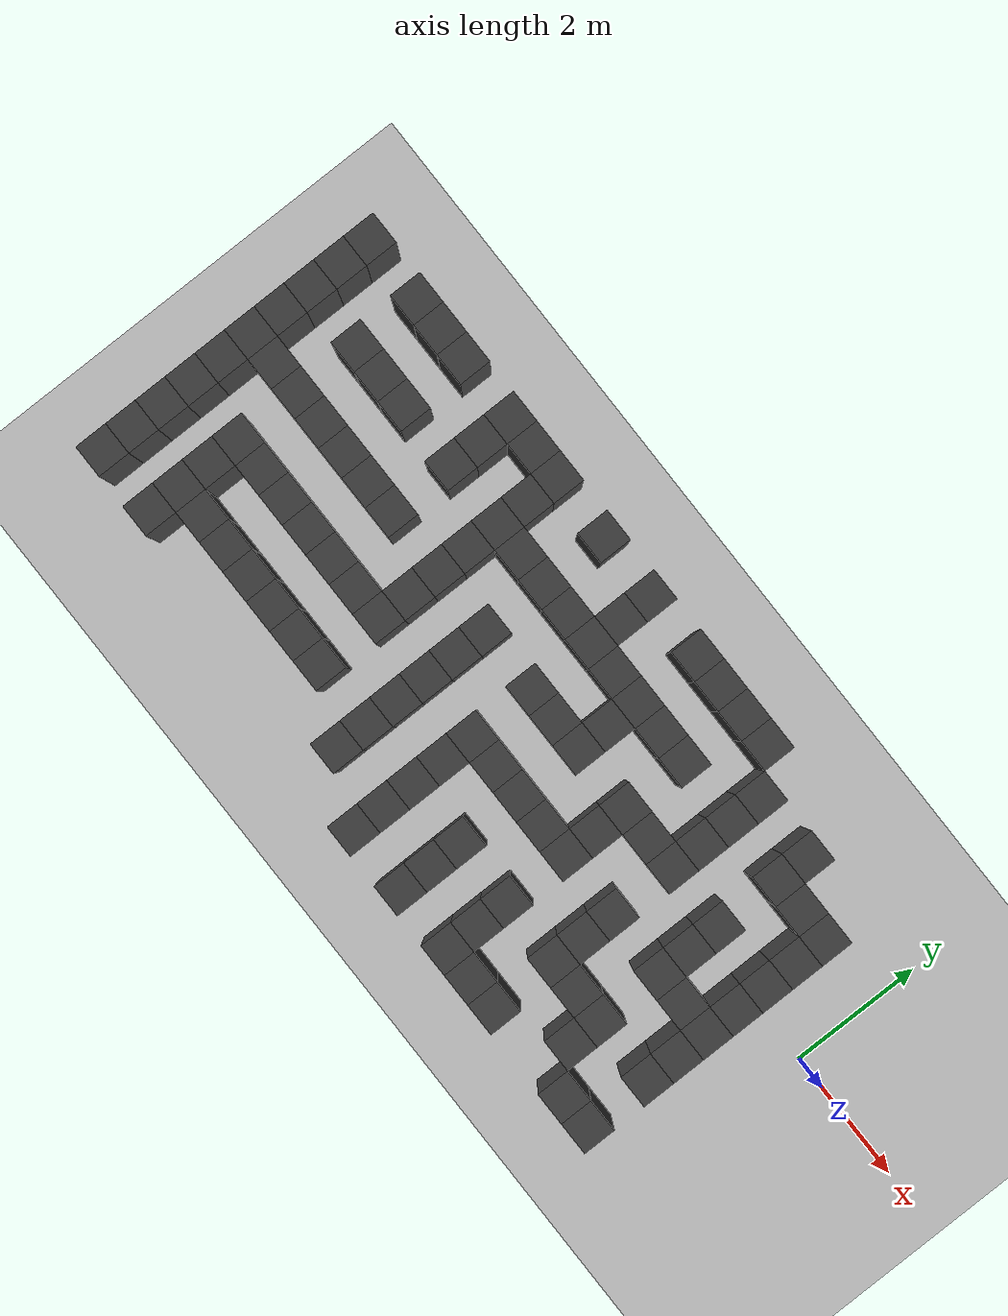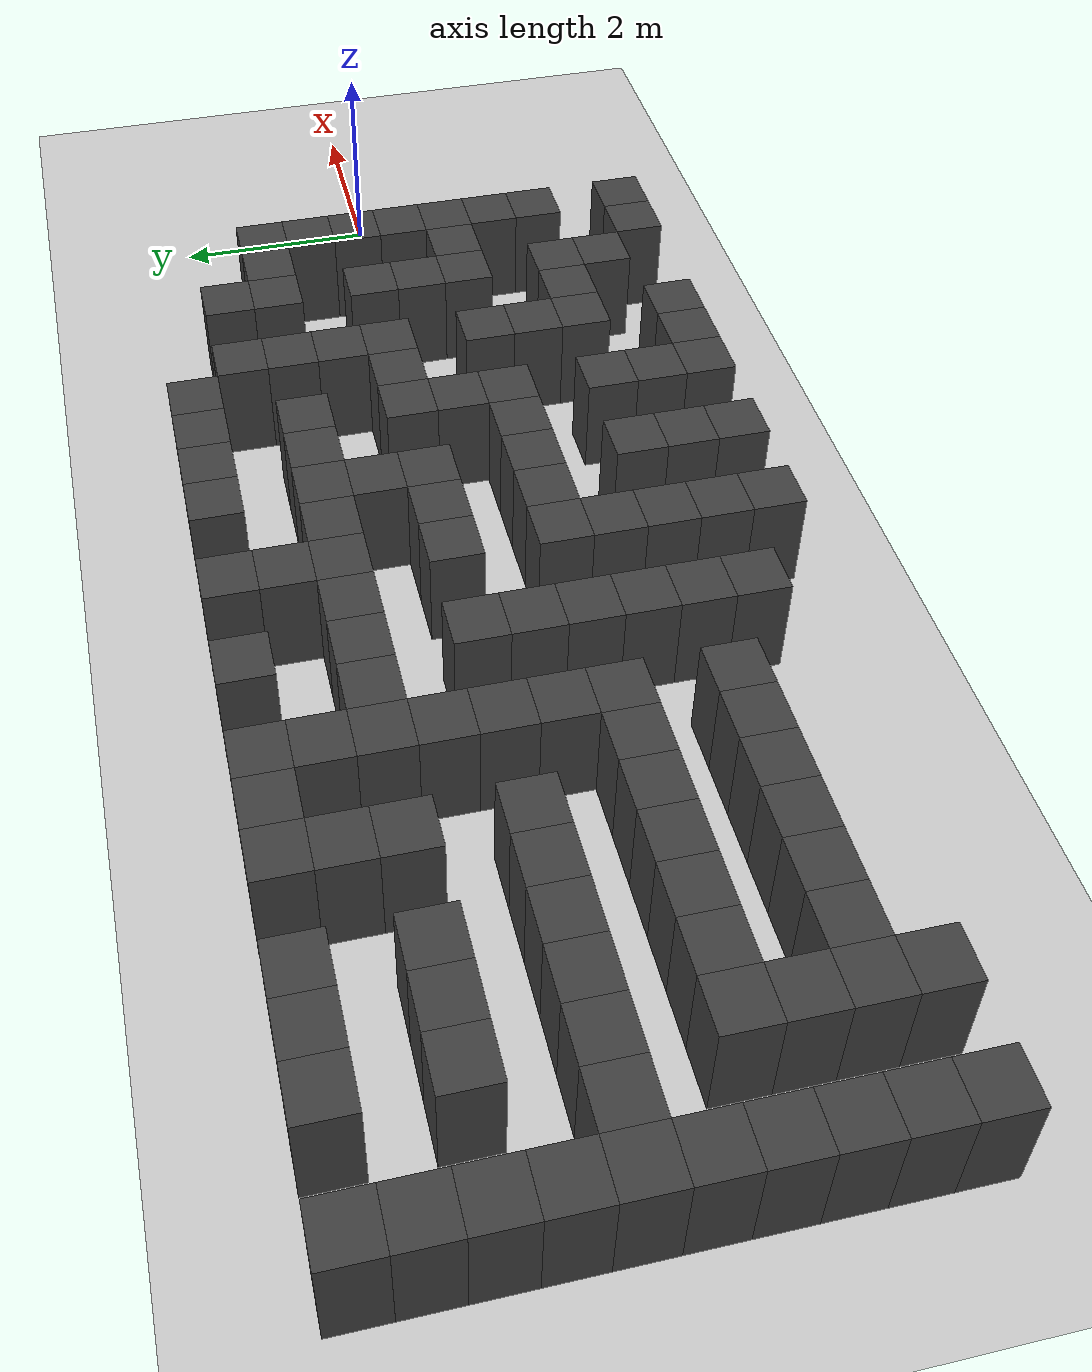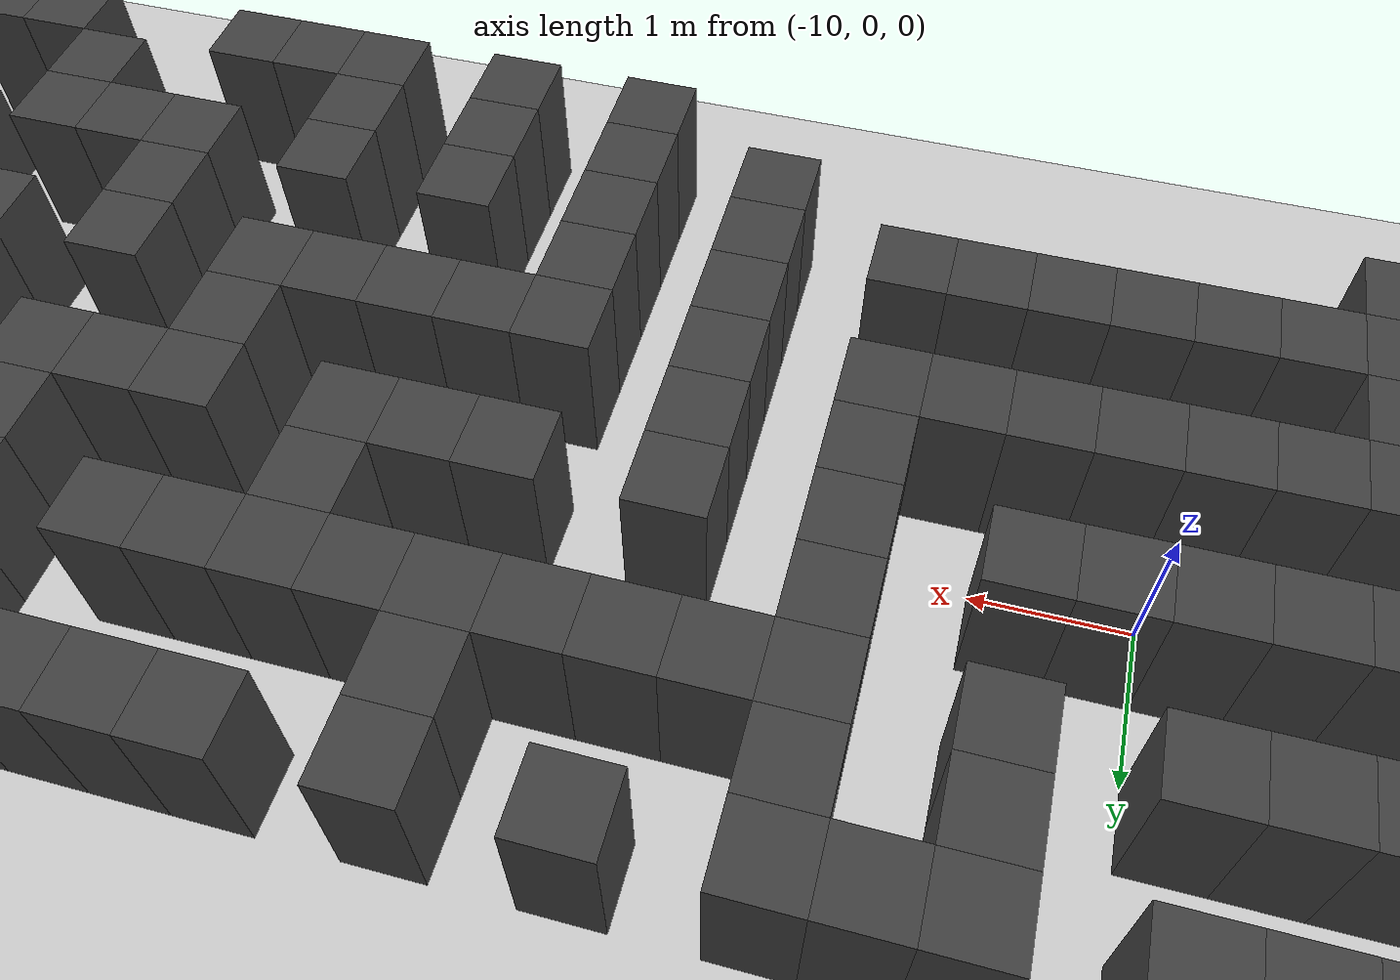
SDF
<sdf version="1.7">
 <world name="map_18914">
  <model name="ground_plane">
   <static>true</static>
   <link name="link">
    <collision name="collision">
     <geometry><plane><normal>0 0 1</normal><size>200 200</size></plane></geometry>
    </collision>
    <visual name="visual">
     <geometry><plane><normal>0 0 1</normal><size>200 200</size></plane></geometry>
     <material><ambient>0.8 0.8 0.8 1</ambient><diffuse>0.8 0.8 0.8 1</diffuse></material>
    </visual>
   </link>
  </model>
  <model name="maze_environment">
   <static>true</static>
   <link name="wall_516">
    <pose>-12.250 2.250 0.500 0 0 0</pose>
    <collision name="col"><geometry><box><size>0.5 0.5 1.0</size></box></geometry></collision>
    <visual name="vis">
     <geometry><box><size>0.5 0.5 1.0</size></box></geometry>
     <material><ambient>0.15 0.15 0.15 1</ambient><diffuse>0.25 0.25 0.25 1</diffuse></material>
    </visual>
   </link>
   <link name="wall_517">
    <pose>-11.250 2.250 0.500 0 0 0</pose>
    <collision name="col"><geometry><box><size>0.5 0.5 1.0</size></box></geometry></collision>
    <visual name="vis">
     <geometry><box><size>0.5 0.5 1.0</size></box></geometry>
     <material><ambient>0.15 0.15 0.15 1</ambient><diffuse>0.25 0.25 0.25 1</diffuse></material>
    </visual>
   </link>
   <link name="wall_518">
    <pose>-10.750 2.250 0.500 0 0 0</pose>
    <collision name="col"><geometry><box><size>0.5 0.5 1.0</size></box></geometry></collision>
    <visual name="vis">
     <geometry><box><size>0.5 0.5 1.0</size></box></geometry>
     <material><ambient>0.15 0.15 0.15 1</ambient><diffuse>0.25 0.25 0.25 1</diffuse></material>
    </visual>
   </link>
   <link name="wall_519">
    <pose>-10.250 2.250 0.500 0 0 0</pose>
    <collision name="col"><geometry><box><size>0.5 0.5 1.0</size></box></geometry></collision>
    <visual name="vis">
     <geometry><box><size>0.5 0.5 1.0</size></box></geometry>
     <material><ambient>0.15 0.15 0.15 1</ambient><diffuse>0.25 0.25 0.25 1</diffuse></material>
    </visual>
   </link>
   <link name="wall_520">
    <pose>-9.250 2.250 0.500 0 0 0</pose>
    <collision name="col"><geometry><box><size>0.5 0.5 1.0</size></box></geometry></collision>
    <visual name="vis">
     <geometry><box><size>0.5 0.5 1.0</size></box></geometry>
     <material><ambient>0.15 0.15 0.15 1</ambient><diffuse>0.25 0.25 0.25 1</diffuse></material>
    </visual>
   </link>
   <link name="wall_521">
    <pose>-8.750 2.250 0.500 0 0 0</pose>
    <collision name="col"><geometry><box><size>0.5 0.5 1.0</size></box></geometry></collision>
    <visual name="vis">
     <geometry><box><size>0.5 0.5 1.0</size></box></geometry>
     <material><ambient>0.15 0.15 0.15 1</ambient><diffuse>0.25 0.25 0.25 1</diffuse></material>
    </visual>
   </link>
   <link name="wall_522">
    <pose>-8.250 2.250 0.500 0 0 0</pose>
    <collision name="col"><geometry><box><size>0.5 0.5 1.0</size></box></geometry></collision>
    <visual name="vis">
     <geometry><box><size>0.5 0.5 1.0</size></box></geometry>
     <material><ambient>0.15 0.15 0.15 1</ambient><diffuse>0.25 0.25 0.25 1</diffuse></material>
    </visual>
   </link>
   <link name="wall_523">
    <pose>-7.250 2.250 0.500 0 0 0</pose>
    <collision name="col"><geometry><box><size>0.5 0.5 1.0</size></box></geometry></collision>
    <visual name="vis">
     <geometry><box><size>0.5 0.5 1.0</size></box></geometry>
     <material><ambient>0.15 0.15 0.15 1</ambient><diffuse>0.25 0.25 0.25 1</diffuse></material>
    </visual>
   </link>
   <link name="wall_524">
    <pose>-6.250 2.250 0.500 0 0 0</pose>
    <collision name="col"><geometry><box><size>0.5 0.5 1.0</size></box></geometry></collision>
    <visual name="vis">
     <geometry><box><size>0.5 0.5 1.0</size></box></geometry>
     <material><ambient>0.15 0.15 0.15 1</ambient><diffuse>0.25 0.25 0.25 1</diffuse></material>
    </visual>
   </link>
   <link name="wall_525">
    <pose>-5.250 2.250 0.500 0 0 0</pose>
    <collision name="col"><geometry><box><size>0.5 0.5 1.0</size></box></geometry></collision>
    <visual name="vis">
     <geometry><box><size>0.5 0.5 1.0</size></box></geometry>
     <material><ambient>0.15 0.15 0.15 1</ambient><diffuse>0.25 0.25 0.25 1</diffuse></material>
    </visual>
   </link>
   <link name="wall_526">
    <pose>-4.750 2.250 0.500 0 0 0</pose>
    <collision name="col"><geometry><box><size>0.5 0.5 1.0</size></box></geometry></collision>
    <visual name="vis">
     <geometry><box><size>0.5 0.5 1.0</size></box></geometry>
     <material><ambient>0.15 0.15 0.15 1</ambient><diffuse>0.25 0.25 0.25 1</diffuse></material>
    </visual>
   </link>
   <link name="wall_527">
    <pose>-4.250 2.250 0.500 0 0 0</pose>
    <collision name="col"><geometry><box><size>0.5 0.5 1.0</size></box></geometry></collision>
    <visual name="vis">
     <geometry><box><size>0.5 0.5 1.0</size></box></geometry>
     <material><ambient>0.15 0.15 0.15 1</ambient><diffuse>0.25 0.25 0.25 1</diffuse></material>
    </visual>
   </link>
   <link name="wall_528">
    <pose>-3.750 2.250 0.500 0 0 0</pose>
    <collision name="col"><geometry><box><size>0.5 0.5 1.0</size></box></geometry></collision>
    <visual name="vis">
     <geometry><box><size>0.5 0.5 1.0</size></box></geometry>
     <material><ambient>0.15 0.15 0.15 1</ambient><diffuse>0.25 0.25 0.25 1</diffuse></material>
    </visual>
   </link>
   <link name="wall_552">
    <pose>-12.250 1.750 0.500 0 0 0</pose>
    <collision name="col"><geometry><box><size>0.5 0.5 1.0</size></box></geometry></collision>
    <visual name="vis">
     <geometry><box><size>0.5 0.5 1.0</size></box></geometry>
     <material><ambient>0.15 0.15 0.15 1</ambient><diffuse>0.25 0.25 0.25 1</diffuse></material>
    </visual>
   </link>
   <link name="wall_553">
    <pose>-9.250 1.750 0.500 0 0 0</pose>
    <collision name="col"><geometry><box><size>0.5 0.5 1.0</size></box></geometry></collision>
    <visual name="vis">
     <geometry><box><size>0.5 0.5 1.0</size></box></geometry>
     <material><ambient>0.15 0.15 0.15 1</ambient><diffuse>0.25 0.25 0.25 1</diffuse></material>
    </visual>
   </link>
   <link name="wall_554">
    <pose>-8.250 1.750 0.500 0 0 0</pose>
    <collision name="col"><geometry><box><size>0.5 0.5 1.0</size></box></geometry></collision>
    <visual name="vis">
     <geometry><box><size>0.5 0.5 1.0</size></box></geometry>
     <material><ambient>0.15 0.15 0.15 1</ambient><diffuse>0.25 0.25 0.25 1</diffuse></material>
    </visual>
   </link>
   <link name="wall_555">
    <pose>-6.250 1.750 0.500 0 0 0</pose>
    <collision name="col"><geometry><box><size>0.5 0.5 1.0</size></box></geometry></collision>
    <visual name="vis">
     <geometry><box><size>0.5 0.5 1.0</size></box></geometry>
     <material><ambient>0.15 0.15 0.15 1</ambient><diffuse>0.25 0.25 0.25 1</diffuse></material>
    </visual>
   </link>
   <link name="wall_556">
    <pose>-3.250 1.750 0.500 0 0 0</pose>
    <collision name="col"><geometry><box><size>0.5 0.5 1.0</size></box></geometry></collision>
    <visual name="vis">
     <geometry><box><size>0.5 0.5 1.0</size></box></geometry>
     <material><ambient>0.15 0.15 0.15 1</ambient><diffuse>0.25 0.25 0.25 1</diffuse></material>
    </visual>
   </link>
   <link name="wall_557">
    <pose>-2.250 1.750 0.500 0 0 0</pose>
    <collision name="col"><geometry><box><size>0.5 0.5 1.0</size></box></geometry></collision>
    <visual name="vis">
     <geometry><box><size>0.5 0.5 1.0</size></box></geometry>
     <material><ambient>0.15 0.15 0.15 1</ambient><diffuse>0.25 0.25 0.25 1</diffuse></material>
    </visual>
   </link>
   <link name="wall_566">
    <pose>-12.250 1.250 0.500 0 0 0</pose>
    <collision name="col"><geometry><box><size>0.5 0.5 1.0</size></box></geometry></collision>
    <visual name="vis">
     <geometry><box><size>0.5 0.5 1.0</size></box></geometry>
     <material><ambient>0.15 0.15 0.15 1</ambient><diffuse>0.25 0.25 0.25 1</diffuse></material>
    </visual>
   </link>
   <link name="wall_567">
    <pose>-11.250 1.250 0.500 0 0 0</pose>
    <collision name="col"><geometry><box><size>0.5 0.5 1.0</size></box></geometry></collision>
    <visual name="vis">
     <geometry><box><size>0.5 0.5 1.0</size></box></geometry>
     <material><ambient>0.15 0.15 0.15 1</ambient><diffuse>0.25 0.25 0.25 1</diffuse></material>
    </visual>
   </link>
   <link name="wall_568">
    <pose>-10.750 1.250 0.500 0 0 0</pose>
    <collision name="col"><geometry><box><size>0.5 0.5 1.0</size></box></geometry></collision>
    <visual name="vis">
     <geometry><box><size>0.5 0.5 1.0</size></box></geometry>
     <material><ambient>0.15 0.15 0.15 1</ambient><diffuse>0.25 0.25 0.25 1</diffuse></material>
    </visual>
   </link>
   <link name="wall_569">
    <pose>-10.250 1.250 0.500 0 0 0</pose>
    <collision name="col"><geometry><box><size>0.5 0.5 1.0</size></box></geometry></collision>
    <visual name="vis">
     <geometry><box><size>0.5 0.5 1.0</size></box></geometry>
     <material><ambient>0.15 0.15 0.15 1</ambient><diffuse>0.25 0.25 0.25 1</diffuse></material>
    </visual>
   </link>
   <link name="wall_570">
    <pose>-9.250 1.250 0.500 0 0 0</pose>
    <collision name="col"><geometry><box><size>0.5 0.5 1.0</size></box></geometry></collision>
    <visual name="vis">
     <geometry><box><size>0.5 0.5 1.0</size></box></geometry>
     <material><ambient>0.15 0.15 0.15 1</ambient><diffuse>0.25 0.25 0.25 1</diffuse></material>
    </visual>
   </link>
   <link name="wall_571">
    <pose>-8.250 1.250 0.500 0 0 0</pose>
    <collision name="col"><geometry><box><size>0.5 0.5 1.0</size></box></geometry></collision>
    <visual name="vis">
     <geometry><box><size>0.5 0.5 1.0</size></box></geometry>
     <material><ambient>0.15 0.15 0.15 1</ambient><diffuse>0.25 0.25 0.25 1</diffuse></material>
    </visual>
   </link>
   <link name="wall_572">
    <pose>-7.750 1.250 0.500 0 0 0</pose>
    <collision name="col"><geometry><box><size>0.5 0.5 1.0</size></box></geometry></collision>
    <visual name="vis">
     <geometry><box><size>0.5 0.5 1.0</size></box></geometry>
     <material><ambient>0.15 0.15 0.15 1</ambient><diffuse>0.25 0.25 0.25 1</diffuse></material>
    </visual>
   </link>
   <link name="wall_573">
    <pose>-7.250 1.250 0.500 0 0 0</pose>
    <collision name="col"><geometry><box><size>0.5 0.5 1.0</size></box></geometry></collision>
    <visual name="vis">
     <geometry><box><size>0.5 0.5 1.0</size></box></geometry>
     <material><ambient>0.15 0.15 0.15 1</ambient><diffuse>0.25 0.25 0.25 1</diffuse></material>
    </visual>
   </link>
   <link name="wall_574">
    <pose>-6.750 1.250 0.500 0 0 0</pose>
    <collision name="col"><geometry><box><size>0.5 0.5 1.0</size></box></geometry></collision>
    <visual name="vis">
     <geometry><box><size>0.5 0.5 1.0</size></box></geometry>
     <material><ambient>0.15 0.15 0.15 1</ambient><diffuse>0.25 0.25 0.25 1</diffuse></material>
    </visual>
   </link>
   <link name="wall_575">
    <pose>-6.250 1.250 0.500 0 0 0</pose>
    <collision name="col"><geometry><box><size>0.5 0.5 1.0</size></box></geometry></collision>
    <visual name="vis">
     <geometry><box><size>0.5 0.5 1.0</size></box></geometry>
     <material><ambient>0.15 0.15 0.15 1</ambient><diffuse>0.25 0.25 0.25 1</diffuse></material>
    </visual>
   </link>
   <link name="wall_576">
    <pose>-5.750 1.250 0.500 0 0 0</pose>
    <collision name="col"><geometry><box><size>0.5 0.5 1.0</size></box></geometry></collision>
    <visual name="vis">
     <geometry><box><size>0.5 0.5 1.0</size></box></geometry>
     <material><ambient>0.15 0.15 0.15 1</ambient><diffuse>0.25 0.25 0.25 1</diffuse></material>
    </visual>
   </link>
   <link name="wall_577">
    <pose>-5.250 1.250 0.500 0 0 0</pose>
    <collision name="col"><geometry><box><size>0.5 0.5 1.0</size></box></geometry></collision>
    <visual name="vis">
     <geometry><box><size>0.5 0.5 1.0</size></box></geometry>
     <material><ambient>0.15 0.15 0.15 1</ambient><diffuse>0.25 0.25 0.25 1</diffuse></material>
    </visual>
   </link>
   <link name="wall_578">
    <pose>-4.750 1.250 0.500 0 0 0</pose>
    <collision name="col"><geometry><box><size>0.5 0.5 1.0</size></box></geometry></collision>
    <visual name="vis">
     <geometry><box><size>0.5 0.5 1.0</size></box></geometry>
     <material><ambient>0.15 0.15 0.15 1</ambient><diffuse>0.25 0.25 0.25 1</diffuse></material>
    </visual>
   </link>
   <link name="wall_579">
    <pose>-4.250 1.250 0.500 0 0 0</pose>
    <collision name="col"><geometry><box><size>0.5 0.5 1.0</size></box></geometry></collision>
    <visual name="vis">
     <geometry><box><size>0.5 0.5 1.0</size></box></geometry>
     <material><ambient>0.15 0.15 0.15 1</ambient><diffuse>0.25 0.25 0.25 1</diffuse></material>
    </visual>
   </link>
   <link name="wall_580">
    <pose>-3.250 1.250 0.500 0 0 0</pose>
    <collision name="col"><geometry><box><size>0.5 0.5 1.0</size></box></geometry></collision>
    <visual name="vis">
     <geometry><box><size>0.5 0.5 1.0</size></box></geometry>
     <material><ambient>0.15 0.15 0.15 1</ambient><diffuse>0.25 0.25 0.25 1</diffuse></material>
    </visual>
   </link>
   <link name="wall_581">
    <pose>-2.250 1.250 0.500 0 0 0</pose>
    <collision name="col"><geometry><box><size>0.5 0.5 1.0</size></box></geometry></collision>
    <visual name="vis">
     <geometry><box><size>0.5 0.5 1.0</size></box></geometry>
     <material><ambient>0.15 0.15 0.15 1</ambient><diffuse>0.25 0.25 0.25 1</diffuse></material>
    </visual>
   </link>
   <link name="wall_582">
    <pose>-1.750 1.250 0.500 0 0 0</pose>
    <collision name="col"><geometry><box><size>0.5 0.5 1.0</size></box></geometry></collision>
    <visual name="vis">
     <geometry><box><size>0.5 0.5 1.0</size></box></geometry>
     <material><ambient>0.15 0.15 0.15 1</ambient><diffuse>0.25 0.25 0.25 1</diffuse></material>
    </visual>
   </link>
   <link name="wall_583">
    <pose>-1.250 1.250 0.500 0 0 0</pose>
    <collision name="col"><geometry><box><size>0.5 0.5 1.0</size></box></geometry></collision>
    <visual name="vis">
     <geometry><box><size>0.5 0.5 1.0</size></box></geometry>
     <material><ambient>0.15 0.15 0.15 1</ambient><diffuse>0.25 0.25 0.25 1</diffuse></material>
    </visual>
   </link>
   <link name="wall_602">
    <pose>-12.250 0.750 0.500 0 0 0</pose>
    <collision name="col"><geometry><box><size>0.5 0.5 1.0</size></box></geometry></collision>
    <visual name="vis">
     <geometry><box><size>0.5 0.5 1.0</size></box></geometry>
     <material><ambient>0.15 0.15 0.15 1</ambient><diffuse>0.25 0.25 0.25 1</diffuse></material>
    </visual>
   </link>
   <link name="wall_603">
    <pose>-8.250 0.750 0.500 0 0 0</pose>
    <collision name="col"><geometry><box><size>0.5 0.5 1.0</size></box></geometry></collision>
    <visual name="vis">
     <geometry><box><size>0.5 0.5 1.0</size></box></geometry>
     <material><ambient>0.15 0.15 0.15 1</ambient><diffuse>0.25 0.25 0.25 1</diffuse></material>
    </visual>
   </link>
   <link name="wall_604">
    <pose>-5.250 0.750 0.500 0 0 0</pose>
    <collision name="col"><geometry><box><size>0.5 0.5 1.0</size></box></geometry></collision>
    <visual name="vis">
     <geometry><box><size>0.5 0.5 1.0</size></box></geometry>
     <material><ambient>0.15 0.15 0.15 1</ambient><diffuse>0.25 0.25 0.25 1</diffuse></material>
    </visual>
   </link>
   <link name="wall_605">
    <pose>-3.250 0.750 0.500 0 0 0</pose>
    <collision name="col"><geometry><box><size>0.5 0.5 1.0</size></box></geometry></collision>
    <visual name="vis">
     <geometry><box><size>0.5 0.5 1.0</size></box></geometry>
     <material><ambient>0.15 0.15 0.15 1</ambient><diffuse>0.25 0.25 0.25 1</diffuse></material>
    </visual>
   </link>
   <link name="wall_606">
    <pose>-1.250 0.750 0.500 0 0 0</pose>
    <collision name="col"><geometry><box><size>0.5 0.5 1.0</size></box></geometry></collision>
    <visual name="vis">
     <geometry><box><size>0.5 0.5 1.0</size></box></geometry>
     <material><ambient>0.15 0.15 0.15 1</ambient><diffuse>0.25 0.25 0.25 1</diffuse></material>
    </visual>
   </link>
   <link name="wall_614">
    <pose>-12.250 0.250 0.500 0 0 0</pose>
    <collision name="col"><geometry><box><size>0.5 0.5 1.0</size></box></geometry></collision>
    <visual name="vis">
     <geometry><box><size>0.5 0.5 1.0</size></box></geometry>
     <material><ambient>0.15 0.15 0.15 1</ambient><diffuse>0.25 0.25 0.25 1</diffuse></material>
    </visual>
   </link>
   <link name="wall_615">
    <pose>-11.750 0.250 0.500 0 0 0</pose>
    <collision name="col"><geometry><box><size>0.5 0.5 1.0</size></box></geometry></collision>
    <visual name="vis">
     <geometry><box><size>0.5 0.5 1.0</size></box></geometry>
     <material><ambient>0.15 0.15 0.15 1</ambient><diffuse>0.25 0.25 0.25 1</diffuse></material>
    </visual>
   </link>
   <link name="wall_616">
    <pose>-11.250 0.250 0.500 0 0 0</pose>
    <collision name="col"><geometry><box><size>0.5 0.5 1.0</size></box></geometry></collision>
    <visual name="vis">
     <geometry><box><size>0.5 0.5 1.0</size></box></geometry>
     <material><ambient>0.15 0.15 0.15 1</ambient><diffuse>0.25 0.25 0.25 1</diffuse></material>
    </visual>
   </link>
   <link name="wall_617">
    <pose>-10.750 0.250 0.500 0 0 0</pose>
    <collision name="col"><geometry><box><size>0.5 0.5 1.0</size></box></geometry></collision>
    <visual name="vis">
     <geometry><box><size>0.5 0.5 1.0</size></box></geometry>
     <material><ambient>0.15 0.15 0.15 1</ambient><diffuse>0.25 0.25 0.25 1</diffuse></material>
    </visual>
   </link>
   <link name="wall_618">
    <pose>-10.250 0.250 0.500 0 0 0</pose>
    <collision name="col"><geometry><box><size>0.5 0.5 1.0</size></box></geometry></collision>
    <visual name="vis">
     <geometry><box><size>0.5 0.5 1.0</size></box></geometry>
     <material><ambient>0.15 0.15 0.15 1</ambient><diffuse>0.25 0.25 0.25 1</diffuse></material>
    </visual>
   </link>
   <link name="wall_619">
    <pose>-9.750 0.250 0.500 0 0 0</pose>
    <collision name="col"><geometry><box><size>0.5 0.5 1.0</size></box></geometry></collision>
    <visual name="vis">
     <geometry><box><size>0.5 0.5 1.0</size></box></geometry>
     <material><ambient>0.15 0.15 0.15 1</ambient><diffuse>0.25 0.25 0.25 1</diffuse></material>
    </visual>
   </link>
   <link name="wall_620">
    <pose>-9.250 0.250 0.500 0 0 0</pose>
    <collision name="col"><geometry><box><size>0.5 0.5 1.0</size></box></geometry></collision>
    <visual name="vis">
     <geometry><box><size>0.5 0.5 1.0</size></box></geometry>
     <material><ambient>0.15 0.15 0.15 1</ambient><diffuse>0.25 0.25 0.25 1</diffuse></material>
    </visual>
   </link>
   <link name="wall_621">
    <pose>-8.250 0.250 0.500 0 0 0</pose>
    <collision name="col"><geometry><box><size>0.5 0.5 1.0</size></box></geometry></collision>
    <visual name="vis">
     <geometry><box><size>0.5 0.5 1.0</size></box></geometry>
     <material><ambient>0.15 0.15 0.15 1</ambient><diffuse>0.25 0.25 0.25 1</diffuse></material>
    </visual>
   </link>
   <link name="wall_622">
    <pose>-7.250 0.250 0.500 0 0 0</pose>
    <collision name="col"><geometry><box><size>0.5 0.5 1.0</size></box></geometry></collision>
    <visual name="vis">
     <geometry><box><size>0.5 0.5 1.0</size></box></geometry>
     <material><ambient>0.15 0.15 0.15 1</ambient><diffuse>0.25 0.25 0.25 1</diffuse></material>
    </visual>
   </link>
   <link name="wall_623">
    <pose>-6.250 0.250 0.500 0 0 0</pose>
    <collision name="col"><geometry><box><size>0.5 0.5 1.0</size></box></geometry></collision>
    <visual name="vis">
     <geometry><box><size>0.5 0.5 1.0</size></box></geometry>
     <material><ambient>0.15 0.15 0.15 1</ambient><diffuse>0.25 0.25 0.25 1</diffuse></material>
    </visual>
   </link>
   <link name="wall_624">
    <pose>-5.750 0.250 0.500 0 0 0</pose>
    <collision name="col"><geometry><box><size>0.5 0.5 1.0</size></box></geometry></collision>
    <visual name="vis">
     <geometry><box><size>0.5 0.5 1.0</size></box></geometry>
     <material><ambient>0.15 0.15 0.15 1</ambient><diffuse>0.25 0.25 0.25 1</diffuse></material>
    </visual>
   </link>
   <link name="wall_625">
    <pose>-5.250 0.250 0.500 0 0 0</pose>
    <collision name="col"><geometry><box><size>0.5 0.5 1.0</size></box></geometry></collision>
    <visual name="vis">
     <geometry><box><size>0.5 0.5 1.0</size></box></geometry>
     <material><ambient>0.15 0.15 0.15 1</ambient><diffuse>0.25 0.25 0.25 1</diffuse></material>
    </visual>
   </link>
   <link name="wall_626">
    <pose>-4.250 0.250 0.500 0 0 0</pose>
    <collision name="col"><geometry><box><size>0.5 0.5 1.0</size></box></geometry></collision>
    <visual name="vis">
     <geometry><box><size>0.5 0.5 1.0</size></box></geometry>
     <material><ambient>0.15 0.15 0.15 1</ambient><diffuse>0.25 0.25 0.25 1</diffuse></material>
    </visual>
   </link>
   <link name="wall_627">
    <pose>-3.750 0.250 0.500 0 0 0</pose>
    <collision name="col"><geometry><box><size>0.5 0.5 1.0</size></box></geometry></collision>
    <visual name="vis">
     <geometry><box><size>0.5 0.5 1.0</size></box></geometry>
     <material><ambient>0.15 0.15 0.15 1</ambient><diffuse>0.25 0.25 0.25 1</diffuse></material>
    </visual>
   </link>
   <link name="wall_628">
    <pose>-3.250 0.250 0.500 0 0 0</pose>
    <collision name="col"><geometry><box><size>0.5 0.5 1.0</size></box></geometry></collision>
    <visual name="vis">
     <geometry><box><size>0.5 0.5 1.0</size></box></geometry>
     <material><ambient>0.15 0.15 0.15 1</ambient><diffuse>0.25 0.25 0.25 1</diffuse></material>
    </visual>
   </link>
   <link name="wall_629">
    <pose>-2.250 0.250 0.500 0 0 0</pose>
    <collision name="col"><geometry><box><size>0.5 0.5 1.0</size></box></geometry></collision>
    <visual name="vis">
     <geometry><box><size>0.5 0.5 1.0</size></box></geometry>
     <material><ambient>0.15 0.15 0.15 1</ambient><diffuse>0.25 0.25 0.25 1</diffuse></material>
    </visual>
   </link>
   <link name="wall_630">
    <pose>-1.250 0.250 0.500 0 0 0</pose>
    <collision name="col"><geometry><box><size>0.5 0.5 1.0</size></box></geometry></collision>
    <visual name="vis">
     <geometry><box><size>0.5 0.5 1.0</size></box></geometry>
     <material><ambient>0.15 0.15 0.15 1</ambient><diffuse>0.25 0.25 0.25 1</diffuse></material>
    </visual>
   </link>
   <link name="wall_652">
    <pose>-12.250 -0.250 0.500 0 0 0</pose>
    <collision name="col"><geometry><box><size>0.5 0.5 1.0</size></box></geometry></collision>
    <visual name="vis">
     <geometry><box><size>0.5 0.5 1.0</size></box></geometry>
     <material><ambient>0.15 0.15 0.15 1</ambient><diffuse>0.25 0.25 0.25 1</diffuse></material>
    </visual>
   </link>
   <link name="wall_653">
    <pose>-8.250 -0.250 0.500 0 0 0</pose>
    <collision name="col"><geometry><box><size>0.5 0.5 1.0</size></box></geometry></collision>
    <visual name="vis">
     <geometry><box><size>0.5 0.5 1.0</size></box></geometry>
     <material><ambient>0.15 0.15 0.15 1</ambient><diffuse>0.25 0.25 0.25 1</diffuse></material>
    </visual>
   </link>
   <link name="wall_654">
    <pose>-7.250 -0.250 0.500 0 0 0</pose>
    <collision name="col"><geometry><box><size>0.5 0.5 1.0</size></box></geometry></collision>
    <visual name="vis">
     <geometry><box><size>0.5 0.5 1.0</size></box></geometry>
     <material><ambient>0.15 0.15 0.15 1</ambient><diffuse>0.25 0.25 0.25 1</diffuse></material>
    </visual>
   </link>
   <link name="wall_655">
    <pose>-4.250 -0.250 0.500 0 0 0</pose>
    <collision name="col"><geometry><box><size>0.5 0.5 1.0</size></box></geometry></collision>
    <visual name="vis">
     <geometry><box><size>0.5 0.5 1.0</size></box></geometry>
     <material><ambient>0.15 0.15 0.15 1</ambient><diffuse>0.25 0.25 0.25 1</diffuse></material>
    </visual>
   </link>
   <link name="wall_656">
    <pose>-2.250 -0.250 0.500 0 0 0</pose>
    <collision name="col"><geometry><box><size>0.5 0.5 1.0</size></box></geometry></collision>
    <visual name="vis">
     <geometry><box><size>0.5 0.5 1.0</size></box></geometry>
     <material><ambient>0.15 0.15 0.15 1</ambient><diffuse>0.25 0.25 0.25 1</diffuse></material>
    </visual>
   </link>
   <link name="wall_657">
    <pose>-1.250 -0.250 0.500 0 0 0</pose>
    <collision name="col"><geometry><box><size>0.5 0.5 1.0</size></box></geometry></collision>
    <visual name="vis">
     <geometry><box><size>0.5 0.5 1.0</size></box></geometry>
     <material><ambient>0.15 0.15 0.15 1</ambient><diffuse>0.25 0.25 0.25 1</diffuse></material>
    </visual>
   </link>
   <link name="wall_665">
    <pose>-12.250 -0.750 0.500 0 0 0</pose>
    <collision name="col"><geometry><box><size>0.5 0.5 1.0</size></box></geometry></collision>
    <visual name="vis">
     <geometry><box><size>0.5 0.5 1.0</size></box></geometry>
     <material><ambient>0.15 0.15 0.15 1</ambient><diffuse>0.25 0.25 0.25 1</diffuse></material>
    </visual>
   </link>
   <link name="wall_666">
    <pose>-11.250 -0.750 0.500 0 0 0</pose>
    <collision name="col"><geometry><box><size>0.5 0.5 1.0</size></box></geometry></collision>
    <visual name="vis">
     <geometry><box><size>0.5 0.5 1.0</size></box></geometry>
     <material><ambient>0.15 0.15 0.15 1</ambient><diffuse>0.25 0.25 0.25 1</diffuse></material>
    </visual>
   </link>
   <link name="wall_667">
    <pose>-10.750 -0.750 0.500 0 0 0</pose>
    <collision name="col"><geometry><box><size>0.5 0.5 1.0</size></box></geometry></collision>
    <visual name="vis">
     <geometry><box><size>0.5 0.5 1.0</size></box></geometry>
     <material><ambient>0.15 0.15 0.15 1</ambient><diffuse>0.25 0.25 0.25 1</diffuse></material>
    </visual>
   </link>
   <link name="wall_668">
    <pose>-10.250 -0.750 0.500 0 0 0</pose>
    <collision name="col"><geometry><box><size>0.5 0.5 1.0</size></box></geometry></collision>
    <visual name="vis">
     <geometry><box><size>0.5 0.5 1.0</size></box></geometry>
     <material><ambient>0.15 0.15 0.15 1</ambient><diffuse>0.25 0.25 0.25 1</diffuse></material>
    </visual>
   </link>
   <link name="wall_669">
    <pose>-9.750 -0.750 0.500 0 0 0</pose>
    <collision name="col"><geometry><box><size>0.5 0.5 1.0</size></box></geometry></collision>
    <visual name="vis">
     <geometry><box><size>0.5 0.5 1.0</size></box></geometry>
     <material><ambient>0.15 0.15 0.15 1</ambient><diffuse>0.25 0.25 0.25 1</diffuse></material>
    </visual>
   </link>
   <link name="wall_670">
    <pose>-9.250 -0.750 0.500 0 0 0</pose>
    <collision name="col"><geometry><box><size>0.5 0.5 1.0</size></box></geometry></collision>
    <visual name="vis">
     <geometry><box><size>0.5 0.5 1.0</size></box></geometry>
     <material><ambient>0.15 0.15 0.15 1</ambient><diffuse>0.25 0.25 0.25 1</diffuse></material>
    </visual>
   </link>
   <link name="wall_671">
    <pose>-8.750 -0.750 0.500 0 0 0</pose>
    <collision name="col"><geometry><box><size>0.5 0.5 1.0</size></box></geometry></collision>
    <visual name="vis">
     <geometry><box><size>0.5 0.5 1.0</size></box></geometry>
     <material><ambient>0.15 0.15 0.15 1</ambient><diffuse>0.25 0.25 0.25 1</diffuse></material>
    </visual>
   </link>
   <link name="wall_672">
    <pose>-8.250 -0.750 0.500 0 0 0</pose>
    <collision name="col"><geometry><box><size>0.5 0.5 1.0</size></box></geometry></collision>
    <visual name="vis">
     <geometry><box><size>0.5 0.5 1.0</size></box></geometry>
     <material><ambient>0.15 0.15 0.15 1</ambient><diffuse>0.25 0.25 0.25 1</diffuse></material>
    </visual>
   </link>
   <link name="wall_673">
    <pose>-7.250 -0.750 0.500 0 0 0</pose>
    <collision name="col"><geometry><box><size>0.5 0.5 1.0</size></box></geometry></collision>
    <visual name="vis">
     <geometry><box><size>0.5 0.5 1.0</size></box></geometry>
     <material><ambient>0.15 0.15 0.15 1</ambient><diffuse>0.25 0.25 0.25 1</diffuse></material>
    </visual>
   </link>
   <link name="wall_674">
    <pose>-6.250 -0.750 0.500 0 0 0</pose>
    <collision name="col"><geometry><box><size>0.5 0.5 1.0</size></box></geometry></collision>
    <visual name="vis">
     <geometry><box><size>0.5 0.5 1.0</size></box></geometry>
     <material><ambient>0.15 0.15 0.15 1</ambient><diffuse>0.25 0.25 0.25 1</diffuse></material>
    </visual>
   </link>
   <link name="wall_675">
    <pose>-5.750 -0.750 0.500 0 0 0</pose>
    <collision name="col"><geometry><box><size>0.5 0.5 1.0</size></box></geometry></collision>
    <visual name="vis">
     <geometry><box><size>0.5 0.5 1.0</size></box></geometry>
     <material><ambient>0.15 0.15 0.15 1</ambient><diffuse>0.25 0.25 0.25 1</diffuse></material>
    </visual>
   </link>
   <link name="wall_676">
    <pose>-5.250 -0.750 0.500 0 0 0</pose>
    <collision name="col"><geometry><box><size>0.5 0.5 1.0</size></box></geometry></collision>
    <visual name="vis">
     <geometry><box><size>0.5 0.5 1.0</size></box></geometry>
     <material><ambient>0.15 0.15 0.15 1</ambient><diffuse>0.25 0.25 0.25 1</diffuse></material>
    </visual>
   </link>
   <link name="wall_677">
    <pose>-4.750 -0.750 0.500 0 0 0</pose>
    <collision name="col"><geometry><box><size>0.5 0.5 1.0</size></box></geometry></collision>
    <visual name="vis">
     <geometry><box><size>0.5 0.5 1.0</size></box></geometry>
     <material><ambient>0.15 0.15 0.15 1</ambient><diffuse>0.25 0.25 0.25 1</diffuse></material>
    </visual>
   </link>
   <link name="wall_678">
    <pose>-4.250 -0.750 0.500 0 0 0</pose>
    <collision name="col"><geometry><box><size>0.5 0.5 1.0</size></box></geometry></collision>
    <visual name="vis">
     <geometry><box><size>0.5 0.5 1.0</size></box></geometry>
     <material><ambient>0.15 0.15 0.15 1</ambient><diffuse>0.25 0.25 0.25 1</diffuse></material>
    </visual>
   </link>
   <link name="wall_679">
    <pose>-3.250 -0.750 0.500 0 0 0</pose>
    <collision name="col"><geometry><box><size>0.5 0.5 1.0</size></box></geometry></collision>
    <visual name="vis">
     <geometry><box><size>0.5 0.5 1.0</size></box></geometry>
     <material><ambient>0.15 0.15 0.15 1</ambient><diffuse>0.25 0.25 0.25 1</diffuse></material>
    </visual>
   </link>
   <link name="wall_680">
    <pose>-2.250 -0.750 0.500 0 0 0</pose>
    <collision name="col"><geometry><box><size>0.5 0.5 1.0</size></box></geometry></collision>
    <visual name="vis">
     <geometry><box><size>0.5 0.5 1.0</size></box></geometry>
     <material><ambient>0.15 0.15 0.15 1</ambient><diffuse>0.25 0.25 0.25 1</diffuse></material>
    </visual>
   </link>
   <link name="wall_681">
    <pose>-1.750 -0.750 0.500 0 0 0</pose>
    <collision name="col"><geometry><box><size>0.5 0.5 1.0</size></box></geometry></collision>
    <visual name="vis">
     <geometry><box><size>0.5 0.5 1.0</size></box></geometry>
     <material><ambient>0.15 0.15 0.15 1</ambient><diffuse>0.25 0.25 0.25 1</diffuse></material>
    </visual>
   </link>
   <link name="wall_682">
    <pose>-1.250 -0.750 0.500 0 0 0</pose>
    <collision name="col"><geometry><box><size>0.5 0.5 1.0</size></box></geometry></collision>
    <visual name="vis">
     <geometry><box><size>0.5 0.5 1.0</size></box></geometry>
     <material><ambient>0.15 0.15 0.15 1</ambient><diffuse>0.25 0.25 0.25 1</diffuse></material>
    </visual>
   </link>
   <link name="wall_703">
    <pose>-12.250 -1.250 0.500 0 0 0</pose>
    <collision name="col"><geometry><box><size>0.5 0.5 1.0</size></box></geometry></collision>
    <visual name="vis">
     <geometry><box><size>0.5 0.5 1.0</size></box></geometry>
     <material><ambient>0.15 0.15 0.15 1</ambient><diffuse>0.25 0.25 0.25 1</diffuse></material>
    </visual>
   </link>
   <link name="wall_704">
    <pose>-11.250 -1.250 0.500 0 0 0</pose>
    <collision name="col"><geometry><box><size>0.5 0.5 1.0</size></box></geometry></collision>
    <visual name="vis">
     <geometry><box><size>0.5 0.5 1.0</size></box></geometry>
     <material><ambient>0.15 0.15 0.15 1</ambient><diffuse>0.25 0.25 0.25 1</diffuse></material>
    </visual>
   </link>
   <link name="wall_705">
    <pose>-7.250 -1.250 0.500 0 0 0</pose>
    <collision name="col"><geometry><box><size>0.5 0.5 1.0</size></box></geometry></collision>
    <visual name="vis">
     <geometry><box><size>0.5 0.5 1.0</size></box></geometry>
     <material><ambient>0.15 0.15 0.15 1</ambient><diffuse>0.25 0.25 0.25 1</diffuse></material>
    </visual>
   </link>
   <link name="wall_706">
    <pose>-6.250 -1.250 0.500 0 0 0</pose>
    <collision name="col"><geometry><box><size>0.5 0.5 1.0</size></box></geometry></collision>
    <visual name="vis">
     <geometry><box><size>0.5 0.5 1.0</size></box></geometry>
     <material><ambient>0.15 0.15 0.15 1</ambient><diffuse>0.25 0.25 0.25 1</diffuse></material>
    </visual>
   </link>
   <link name="wall_707">
    <pose>-3.250 -1.250 0.500 0 0 0</pose>
    <collision name="col"><geometry><box><size>0.5 0.5 1.0</size></box></geometry></collision>
    <visual name="vis">
     <geometry><box><size>0.5 0.5 1.0</size></box></geometry>
     <material><ambient>0.15 0.15 0.15 1</ambient><diffuse>0.25 0.25 0.25 1</diffuse></material>
    </visual>
   </link>
   <link name="wall_708">
    <pose>-1.250 -1.250 0.500 0 0 0</pose>
    <collision name="col"><geometry><box><size>0.5 0.5 1.0</size></box></geometry></collision>
    <visual name="vis">
     <geometry><box><size>0.5 0.5 1.0</size></box></geometry>
     <material><ambient>0.15 0.15 0.15 1</ambient><diffuse>0.25 0.25 0.25 1</diffuse></material>
    </visual>
   </link>
   <link name="wall_716">
    <pose>-12.250 -1.750 0.500 0 0 0</pose>
    <collision name="col"><geometry><box><size>0.5 0.5 1.0</size></box></geometry></collision>
    <visual name="vis">
     <geometry><box><size>0.5 0.5 1.0</size></box></geometry>
     <material><ambient>0.15 0.15 0.15 1</ambient><diffuse>0.25 0.25 0.25 1</diffuse></material>
    </visual>
   </link>
   <link name="wall_717">
    <pose>-11.250 -1.750 0.500 0 0 0</pose>
    <collision name="col"><geometry><box><size>0.5 0.5 1.0</size></box></geometry></collision>
    <visual name="vis">
     <geometry><box><size>0.5 0.5 1.0</size></box></geometry>
     <material><ambient>0.15 0.15 0.15 1</ambient><diffuse>0.25 0.25 0.25 1</diffuse></material>
    </visual>
   </link>
   <link name="wall_718">
    <pose>-10.750 -1.750 0.500 0 0 0</pose>
    <collision name="col"><geometry><box><size>0.5 0.5 1.0</size></box></geometry></collision>
    <visual name="vis">
     <geometry><box><size>0.5 0.5 1.0</size></box></geometry>
     <material><ambient>0.15 0.15 0.15 1</ambient><diffuse>0.25 0.25 0.25 1</diffuse></material>
    </visual>
   </link>
   <link name="wall_719">
    <pose>-10.250 -1.750 0.500 0 0 0</pose>
    <collision name="col"><geometry><box><size>0.5 0.5 1.0</size></box></geometry></collision>
    <visual name="vis">
     <geometry><box><size>0.5 0.5 1.0</size></box></geometry>
     <material><ambient>0.15 0.15 0.15 1</ambient><diffuse>0.25 0.25 0.25 1</diffuse></material>
    </visual>
   </link>
   <link name="wall_720">
    <pose>-9.750 -1.750 0.500 0 0 0</pose>
    <collision name="col"><geometry><box><size>0.5 0.5 1.0</size></box></geometry></collision>
    <visual name="vis">
     <geometry><box><size>0.5 0.5 1.0</size></box></geometry>
     <material><ambient>0.15 0.15 0.15 1</ambient><diffuse>0.25 0.25 0.25 1</diffuse></material>
    </visual>
   </link>
   <link name="wall_721">
    <pose>-9.250 -1.750 0.500 0 0 0</pose>
    <collision name="col"><geometry><box><size>0.5 0.5 1.0</size></box></geometry></collision>
    <visual name="vis">
     <geometry><box><size>0.5 0.5 1.0</size></box></geometry>
     <material><ambient>0.15 0.15 0.15 1</ambient><diffuse>0.25 0.25 0.25 1</diffuse></material>
    </visual>
   </link>
   <link name="wall_722">
    <pose>-8.750 -1.750 0.500 0 0 0</pose>
    <collision name="col"><geometry><box><size>0.5 0.5 1.0</size></box></geometry></collision>
    <visual name="vis">
     <geometry><box><size>0.5 0.5 1.0</size></box></geometry>
     <material><ambient>0.15 0.15 0.15 1</ambient><diffuse>0.25 0.25 0.25 1</diffuse></material>
    </visual>
   </link>
   <link name="wall_723">
    <pose>-8.250 -1.750 0.500 0 0 0</pose>
    <collision name="col"><geometry><box><size>0.5 0.5 1.0</size></box></geometry></collision>
    <visual name="vis">
     <geometry><box><size>0.5 0.5 1.0</size></box></geometry>
     <material><ambient>0.15 0.15 0.15 1</ambient><diffuse>0.25 0.25 0.25 1</diffuse></material>
    </visual>
   </link>
   <link name="wall_724">
    <pose>-7.250 -1.750 0.500 0 0 0</pose>
    <collision name="col"><geometry><box><size>0.5 0.5 1.0</size></box></geometry></collision>
    <visual name="vis">
     <geometry><box><size>0.5 0.5 1.0</size></box></geometry>
     <material><ambient>0.15 0.15 0.15 1</ambient><diffuse>0.25 0.25 0.25 1</diffuse></material>
    </visual>
   </link>
   <link name="wall_725">
    <pose>-6.250 -1.750 0.500 0 0 0</pose>
    <collision name="col"><geometry><box><size>0.5 0.5 1.0</size></box></geometry></collision>
    <visual name="vis">
     <geometry><box><size>0.5 0.5 1.0</size></box></geometry>
     <material><ambient>0.15 0.15 0.15 1</ambient><diffuse>0.25 0.25 0.25 1</diffuse></material>
    </visual>
   </link>
   <link name="wall_726">
    <pose>-5.250 -1.750 0.500 0 0 0</pose>
    <collision name="col"><geometry><box><size>0.5 0.5 1.0</size></box></geometry></collision>
    <visual name="vis">
     <geometry><box><size>0.5 0.5 1.0</size></box></geometry>
     <material><ambient>0.15 0.15 0.15 1</ambient><diffuse>0.25 0.25 0.25 1</diffuse></material>
    </visual>
   </link>
   <link name="wall_727">
    <pose>-4.250 -1.750 0.500 0 0 0</pose>
    <collision name="col"><geometry><box><size>0.5 0.5 1.0</size></box></geometry></collision>
    <visual name="vis">
     <geometry><box><size>0.5 0.5 1.0</size></box></geometry>
     <material><ambient>0.15 0.15 0.15 1</ambient><diffuse>0.25 0.25 0.25 1</diffuse></material>
    </visual>
   </link>
   <link name="wall_728">
    <pose>-3.250 -1.750 0.500 0 0 0</pose>
    <collision name="col"><geometry><box><size>0.5 0.5 1.0</size></box></geometry></collision>
    <visual name="vis">
     <geometry><box><size>0.5 0.5 1.0</size></box></geometry>
     <material><ambient>0.15 0.15 0.15 1</ambient><diffuse>0.25 0.25 0.25 1</diffuse></material>
    </visual>
   </link>
   <link name="wall_729">
    <pose>-2.750 -1.750 0.500 0 0 0</pose>
    <collision name="col"><geometry><box><size>0.5 0.5 1.0</size></box></geometry></collision>
    <visual name="vis">
     <geometry><box><size>0.5 0.5 1.0</size></box></geometry>
     <material><ambient>0.15 0.15 0.15 1</ambient><diffuse>0.25 0.25 0.25 1</diffuse></material>
    </visual>
   </link>
   <link name="wall_730">
    <pose>-2.250 -1.750 0.500 0 0 0</pose>
    <collision name="col"><geometry><box><size>0.5 0.5 1.0</size></box></geometry></collision>
    <visual name="vis">
     <geometry><box><size>0.5 0.5 1.0</size></box></geometry>
     <material><ambient>0.15 0.15 0.15 1</ambient><diffuse>0.25 0.25 0.25 1</diffuse></material>
    </visual>
   </link>
   <link name="wall_731">
    <pose>-1.250 -1.750 0.500 0 0 0</pose>
    <collision name="col"><geometry><box><size>0.5 0.5 1.0</size></box></geometry></collision>
    <visual name="vis">
     <geometry><box><size>0.5 0.5 1.0</size></box></geometry>
     <material><ambient>0.15 0.15 0.15 1</ambient><diffuse>0.25 0.25 0.25 1</diffuse></material>
    </visual>
   </link>
   <link name="wall_753">
    <pose>-12.250 -2.250 0.500 0 0 0</pose>
    <collision name="col"><geometry><box><size>0.5 0.5 1.0</size></box></geometry></collision>
    <visual name="vis">
     <geometry><box><size>0.5 0.5 1.0</size></box></geometry>
     <material><ambient>0.15 0.15 0.15 1</ambient><diffuse>0.25 0.25 0.25 1</diffuse></material>
    </visual>
   </link>
   <link name="wall_754">
    <pose>-11.250 -2.250 0.500 0 0 0</pose>
    <collision name="col"><geometry><box><size>0.5 0.5 1.0</size></box></geometry></collision>
    <visual name="vis">
     <geometry><box><size>0.5 0.5 1.0</size></box></geometry>
     <material><ambient>0.15 0.15 0.15 1</ambient><diffuse>0.25 0.25 0.25 1</diffuse></material>
    </visual>
   </link>
   <link name="wall_755">
    <pose>-7.250 -2.250 0.500 0 0 0</pose>
    <collision name="col"><geometry><box><size>0.5 0.5 1.0</size></box></geometry></collision>
    <visual name="vis">
     <geometry><box><size>0.5 0.5 1.0</size></box></geometry>
     <material><ambient>0.15 0.15 0.15 1</ambient><diffuse>0.25 0.25 0.25 1</diffuse></material>
    </visual>
   </link>
   <link name="wall_756">
    <pose>-6.250 -2.250 0.500 0 0 0</pose>
    <collision name="col"><geometry><box><size>0.5 0.5 1.0</size></box></geometry></collision>
    <visual name="vis">
     <geometry><box><size>0.5 0.5 1.0</size></box></geometry>
     <material><ambient>0.15 0.15 0.15 1</ambient><diffuse>0.25 0.25 0.25 1</diffuse></material>
    </visual>
   </link>
   <link name="wall_757">
    <pose>-5.250 -2.250 0.500 0 0 0</pose>
    <collision name="col"><geometry><box><size>0.5 0.5 1.0</size></box></geometry></collision>
    <visual name="vis">
     <geometry><box><size>0.5 0.5 1.0</size></box></geometry>
     <material><ambient>0.15 0.15 0.15 1</ambient><diffuse>0.25 0.25 0.25 1</diffuse></material>
    </visual>
   </link>
   <link name="wall_758">
    <pose>-4.250 -2.250 0.500 0 0 0</pose>
    <collision name="col"><geometry><box><size>0.5 0.5 1.0</size></box></geometry></collision>
    <visual name="vis">
     <geometry><box><size>0.5 0.5 1.0</size></box></geometry>
     <material><ambient>0.15 0.15 0.15 1</ambient><diffuse>0.25 0.25 0.25 1</diffuse></material>
    </visual>
   </link>
   <link name="wall_759">
    <pose>-2.250 -2.250 0.500 0 0 0</pose>
    <collision name="col"><geometry><box><size>0.5 0.5 1.0</size></box></geometry></collision>
    <visual name="vis">
     <geometry><box><size>0.5 0.5 1.0</size></box></geometry>
     <material><ambient>0.15 0.15 0.15 1</ambient><diffuse>0.25 0.25 0.25 1</diffuse></material>
    </visual>
   </link>
   <link name="wall_776">
    <pose>-6.250 -2.750 0.500 0 0 0</pose>
    <collision name="col"><geometry><box><size>0.5 0.5 1.0</size></box></geometry></collision>
    <visual name="vis">
     <geometry><box><size>0.5 0.5 1.0</size></box></geometry>
     <material><ambient>0.15 0.15 0.15 1</ambient><diffuse>0.25 0.25 0.25 1</diffuse></material>
    </visual>
   </link>
   <link name="wall_777">
    <pose>-5.250 -2.750 0.500 0 0 0</pose>
    <collision name="col"><geometry><box><size>0.5 0.5 1.0</size></box></geometry></collision>
    <visual name="vis">
     <geometry><box><size>0.5 0.5 1.0</size></box></geometry>
     <material><ambient>0.15 0.15 0.15 1</ambient><diffuse>0.25 0.25 0.25 1</diffuse></material>
    </visual>
   </link>
   <link name="wall_778">
    <pose>-4.250 -2.750 0.500 0 0 0</pose>
    <collision name="col"><geometry><box><size>0.5 0.5 1.0</size></box></geometry></collision>
    <visual name="vis">
     <geometry><box><size>0.5 0.5 1.0</size></box></geometry>
     <material><ambient>0.15 0.15 0.15 1</ambient><diffuse>0.25 0.25 0.25 1</diffuse></material>
    </visual>
   </link>
   <link name="wall_779">
    <pose>-3.750 -2.750 0.500 0 0 0</pose>
    <collision name="col"><geometry><box><size>0.5 0.5 1.0</size></box></geometry></collision>
    <visual name="vis">
     <geometry><box><size>0.5 0.5 1.0</size></box></geometry>
     <material><ambient>0.15 0.15 0.15 1</ambient><diffuse>0.25 0.25 0.25 1</diffuse></material>
    </visual>
   </link>
   <link name="wall_780">
    <pose>-3.250 -2.750 0.500 0 0 0</pose>
    <collision name="col"><geometry><box><size>0.5 0.5 1.0</size></box></geometry></collision>
    <visual name="vis">
     <geometry><box><size>0.5 0.5 1.0</size></box></geometry>
     <material><ambient>0.15 0.15 0.15 1</ambient><diffuse>0.25 0.25 0.25 1</diffuse></material>
    </visual>
   </link>
   <link name="wall_781">
    <pose>-1.750 -2.750 0.500 0 0 0</pose>
    <collision name="col"><geometry><box><size>0.5 0.5 1.0</size></box></geometry></collision>
    <visual name="vis">
     <geometry><box><size>0.5 0.5 1.0</size></box></geometry>
     <material><ambient>0.15 0.15 0.15 1</ambient><diffuse>0.25 0.25 0.25 1</diffuse></material>
    </visual>
   </link>
   <link name="wall_782">
    <pose>-1.250 -2.750 0.500 0 0 0</pose>
    <collision name="col"><geometry><box><size>0.5 0.5 1.0</size></box></geometry></collision>
    <visual name="vis">
     <geometry><box><size>0.5 0.5 1.0</size></box></geometry>
     <material><ambient>0.15 0.15 0.15 1</ambient><diffuse>0.25 0.25 0.25 1</diffuse></material>
    </visual>
   </link>
  </model>
 </world>
</sdf>
